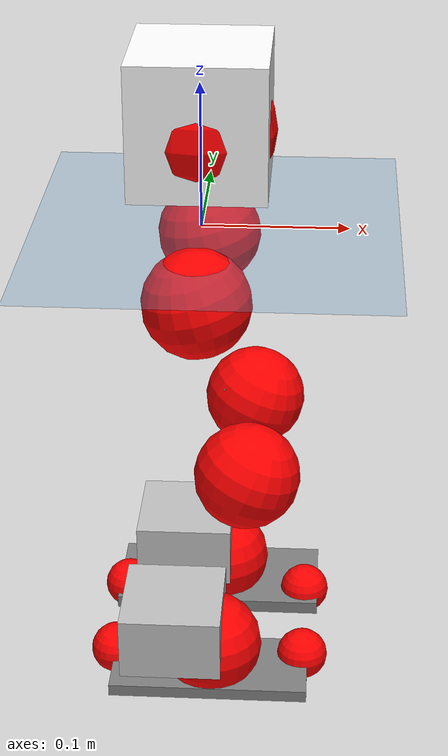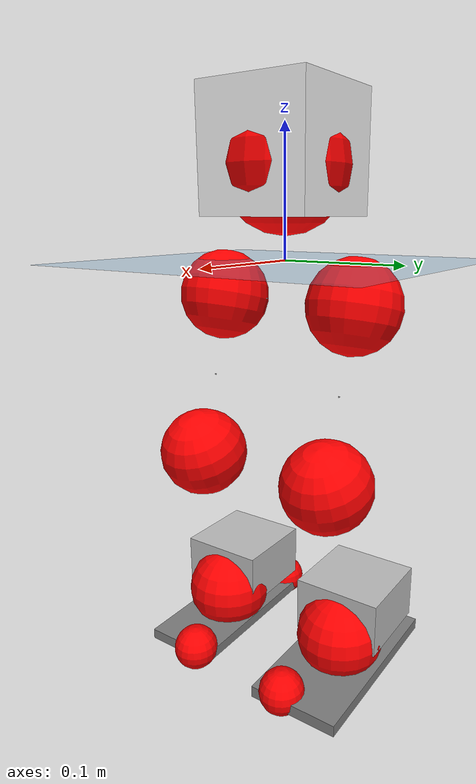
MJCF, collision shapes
<mujoco model="pi_12dof_release_v1">
  <compiler angle="radian" assetdir="assets" balanceinertia="true" inertiafromgeom="false"/>

  <option timestep="0.005" density="1.2" viscosity="2e-05"/>

  <size nkey="1"/>

  <visual>
    <quality shadowsize="8192"/>
    <map shadowclip="0.5"/>
  </visual>

  <default>
    <default class="/">
      <joint armature="0.01" damping="0.01" frictionloss="0.01"/>
      <geom contype="0" conaffinity="0" group="1" solref="-1000 -80"/>
      <site size="0.01 0.005 0.005" group="5"/>
      <general forcelimited="true" biastype="affine" gainprm="20" biasprm="0 -20 -0.5"/>
      <default class="foot">
        <geom size="0.0845 0.036 0.005" type="box" condim="6" group="4" priority="1" friction="0.9 0.2 0.2" solimp="0.015 1 0.005"/>
      </default>
      <default class="reward_collision_sphere">
        <geom group="5" rgba="1 0 0 1"/>
      </default>
    </default>
  </default>

  <asset>
    <texture type="skybox" colorspace="auto" name="//unnamed_texture_0" builtin="gradient" rgb1="0.95 0.95 0.95" rgb2="0.95 0.95 0.95" width="100" height="600"/>
    <texture type="2d" colorspace="auto" name="texplane" builtin="checker" rgb1="0.345 0.575 0.748" rgb2="0.345 0.575 0.748" markrgb="1 1 1" width="512" height="512"/>
    <material name="MatPlane" class="/" texture="texplane" texuniform="true" texrepeat="2 2" specular="0.9"/>
    <mesh name="baselink_1" class="/" file="baselink_1.STL"/>
    <mesh name="r_hip_pitch_link" class="/" file="r_hip_pitch_link.STL"/>
    <mesh name="r_hip_roll_link" class="/" file="r_hip_roll_link.STL"/>
    <mesh name="r_thigh_link" class="/" file="r_thigh_link.STL"/>
    <mesh name="r_calf_link" class="/" file="r_calf_link.STL"/>
    <mesh name="r_ankle_pitch_link" class="/" file="r_ankle_pitch_link.STL"/>
    <mesh name="r_ankle_roll_link" class="/" file="r_ankle_roll_link.STL"/>
    <mesh name="l_hip_pitch_link" class="/" file="l_hip_pitch_link.STL"/>
    <mesh name="l_hip_roll_link" class="/" file="l_hip_roll_link.STL"/>
    <mesh name="l_thigh_link" class="/" file="l_thigh_link.STL"/>
    <mesh name="l_calf_link" class="/" file="l_calf_link.STL"/>
    <mesh name="l_ankle_pitch_link" class="/" file="l_ankle_pitch_link.STL"/>
    <mesh name="l_ankle_roll_link" class="/" file="l_ankle_roll_link.STL"/>
  </asset>

  <worldbody>
    <geom name="floor" class="/" size="100 100 0.125" type="plane" group="0" material="MatPlane"/>
    <light name="toplight_shadow" class="/" pos="0 0 5" dir="0.0990148 0.0990148 -0.990148" type="directional" ambient="0.04 0.04 0.04" diffuse="0.55 0.55 0.55" specular="0.12 0.12 0.12"/>
    <light name="toplight_fill" class="/" pos="0 0 5" dir="0.0990148 0.0990148 -0.990148" type="directional" castshadow="false" ambient="0.04 0.04 0.04" diffuse="0.3 0.3 0.3" specular="0.08 0.08 0.08"/>
    <body name="trunk" pos="0.000375553 0.000514506 0.000960653" quat="1 0.000203268 -0.000288914 3.69027e-05">
      <inertial pos="0.00330946 -0.00153018 0.0392818" quat="0.695191 0.0105884 0.00915231 0.718688" mass="1.66823" diaginertia="0.0109363 0.00242148 0.00362285"/>
      <joint name="//unnamed_joint_0" type="free"/>
      <geom name="//unnamed_geom_1" class="/" type="mesh" density="0" rgba="1 1 1 1" mesh="baselink_1"/>
      <geom name="//unnamed_geom_2" class="/" size="0.0459382 0.0459382 0.0459382" pos="0 0 0.0774812" type="box" rgba="1 1 1 1"/>
      <geom name="//unnamed_geom_3" class="reward_collision_sphere" size="0.050532" pos="0 0 0.0677961"/>
      <site name="imu" class="/" pos="-0.00455598 -0.00835576 0.00321844" size="0.00918763"/>
      <camera name="track" class="/" pos="0 -1.53811 0" quat="0.707107 0.707107 0 0" mode="trackcom"/>
      <camera name="ego_camera" class="/" pos="0.0764041 0 0.174333" quat="-0.5 -0.5 0.5 0.5"/>
      <body name="r_hip_pitch_link" pos="0.000155052 -0.0174497 -0.0314338" quat="0.992122 -0.000277783 -0.125275 -0.000218766">
        <inertial pos="0.00200823 -0.0431153 -0.000134628" quat="-0.0192899 0.705043 -0.0289369 0.708312" mass="0.29076" diaginertia="0.000120749 2.67606e-05 7.08712e-05"/>
        <joint name="r_hip_pitch_joint" class="/" pos="0 0 0" axis="0.00361417 -0.999993 0.000896399" range="-1.75488 1.25558" armature="0.00961416" damping="0.0153221" frictionloss="0.00911432"/>
        <geom name="//unnamed_geom_4" class="/" type="mesh" density="0" rgba="0.75294 0.75294 0.75294 1" mesh="r_hip_pitch_link"/>
        <geom name="//unnamed_geom_5" class="/" size="0.000459382 0.000459382 0.000459382" type="box" rgba="0.75294 0.75294 0.75294 1"/>
        <body name="r_hip_roll_link" pos="0.000617799 -0.0426652 0.000321401" quat="1 4.64268e-05 2.2515e-05 -1.62879e-05">
          <inertial pos="-0.00141225 -0.00130535 -0.0612979" quat="0.706069 -0.0797487 -0.081684 0.69888" mass="0.29857" diaginertia="0.000367855 7.54612e-05 0.000109705"/>
          <joint name="r_hip_roll_joint" class="/" pos="0 0 0" axis="-0.999999 -0.00043908 -0.00121683" range="-0.112162 0.514971" armature="0.00890104" damping="0.00719683" frictionloss="0.00939752"/>
          <geom name="//unnamed_geom_6" class="/" type="mesh" density="0" rgba="0.75294 0.75294 0.75294 1" mesh="r_hip_roll_link"/>
          <geom name="//unnamed_geom_7" class="/" size="0.000459382 0.000459382 0.000459382" type="box" rgba="0.75294 0.75294 0.75294 1"/>
          <geom name="//unnamed_geom_8" class="reward_collision_sphere" size="0.0367505"/>
          <body name="r_thigh_link" pos="0.00156496 0.00216961 -0.0669937" quat="1 6.00627e-05 1.94693e-05 0.000155677">
            <inertial pos="0.000327142 0.00167691 -0.0467387" quat="0.737635 0.675199 0.000418734 -0.00034117" mass="0.0882984" diaginertia="0.000136027 2.53534e-05 4.91754e-05"/>
            <joint name="r_thigh_joint" class="/" pos="0 0 0" axis="0.000948526 0.000719857 -0.999999" range="-0.30599 0.581146" armature="0.00940854" damping="0.0017973" frictionloss="0.00840877"/>
            <geom name="//unnamed_geom_9" class="/" type="mesh" density="0" rgba="0.75294 0.75294 0.75294 1" mesh="r_thigh_link"/>
            <geom name="//unnamed_geom_10" class="/" size="0.000459382 0.000459382 0.000459382" type="box" rgba="0.75294 0.75294 0.75294 1"/>
            <body name="r_calf_link" pos="-0.00121756 -0.0024169 -0.0668819" quat="0.947632 -2.21306e-05 0.319364 -3.36891e-05">
              <inertial pos="8.42339e-05 4.88598e-05 -0.0675081" quat="0.999954 -0.00564569 0.00409786 0.00655672" mass="0.641366" diaginertia="0.0039676 0.00094532 0.000151833"/>
              <joint name="r_calf_joint" class="/" pos="0 0 0" axis="0.000805626 -0.999999 0.000600483" range="-1.63253 0.645395" armature="0.00920587" damping="0.0107345" frictionloss="0.00929109"/>
              <geom name="//unnamed_geom_11" class="/" type="mesh" density="0" rgba="0.75294 0.75294 0.75294 1" mesh="r_calf_link"/>
              <geom name="//unnamed_geom_12" class="/" size="0.000459382 0.000459382 0.000459382" type="box" rgba="0.75294 0.75294 0.75294 1"/>
              <geom name="//unnamed_geom_13" class="reward_collision_sphere" size="0.0367505"/>
              <body name="r_ankle_pitch_link" pos="1.9356e-05 1.53706e-05 -0.135478" quat="0.980025 -7.08504e-05 -0.198876 1.50898e-05">
                <inertial pos="0.00469317 0.00286313 -0.00154104" quat="0.00292431 0.713238 -0.00190911 0.700914" mass="0.13778" diaginertia="0.00034644 6.05136e-05 0.000103584"/>
                <joint name="r_ankle_pitch_joint" class="/" pos="0 0 0" axis="-0.000924454 -0.99999 0.00441992" range="-1.29928 0.531156" armature="0.00913283" damping="0.0085657" frictionloss="0.00945185"/>
                <geom name="//unnamed_geom_14" class="/" type="mesh" density="0" rgba="0.75294 0.75294 0.75294 1" mesh="r_ankle_pitch_link"/>
                <geom name="//unnamed_geom_15" class="/" size="0.0358318 0.0367505 0.0229691" type="box" rgba="0.75294 0.75294 0.75294 1"/>
                <body name="r_ankle_roll_link" pos="0.0777703 0.0025227 0.0002418" quat="1 3.26476e-05 -5.38313e-05 -0.00010611">
                  <inertial pos="-0.0242357 -0.000244807 -0.0123939" quat="0.556878 0.429516 0.437077 0.560685" mass="0.393588" diaginertia="0.00120136 0.000276777 0.000233523"/>
                  <joint name="r_ankle_roll_joint" class="/" pos="0 0 0" axis="-0.999984 0.00403427 0.00400208" stiffness="0.000744431" range="-0.164908 0.13999" armature="0.00865097" damping="0.00701129" frictionloss="0.00960826"/>
                  <geom name="//unnamed_geom_16" class="/" type="mesh" density="0" rgba="0.75294 0.75294 0.75294 1" mesh="r_ankle_roll_link"/>
                  <geom name="//unnamed_geom_17" class="/" type="mesh" rgba="0.75294 0.75294 0.75294 1" mesh="r_ankle_roll_link"/>
                  <geom name="right_foot" class="foot" size="0.0711081 0.0312772 0.00437218" pos="-0.0519548 0 -0.0426147"/>
                  <geom name="//unnamed_geom_19" class="reward_collision_sphere" size="0.0367505" pos="-0.050936 0 -0.0193703"/>
                  <geom name="//unnamed_geom_20" class="reward_collision_sphere" size="0.0183753" pos="0.0152808 0.0153811 -0.0387406"/>
                  <geom name="//unnamed_geom_21" class="reward_collision_sphere" size="0.0183753" pos="-0.122246 0.0153811 -0.0387406"/>
                  <site name="right_foot" class="foot" pos="-0.0519548 0 -0.0426147" size="0.00918763"/>
                </body>
              </body>
            </body>
          </body>
        </body>
      </body>
      <body name="l_hip_pitch_link" pos="0.000302311 0.0186995 -0.0326748" quat="0.992199 1.25457e-05 -0.124661 -1.53282e-05">
        <inertial pos="0.000942129 0.040945 -0.000953461" quat="-0.0401414 0.704369 0.0287087 0.708116" mass="0.303945" diaginertia="0.000140992 2.8321e-05 8.54324e-05"/>
        <joint name="l_hip_pitch_joint" class="/" pos="0 0 0" axis="0.00544056 0.999985 0.000236728" range="-1.25078 1.7536" armature="0.00911578" damping="0.0143739" frictionloss="0.00894791"/>
        <geom name="//unnamed_geom_22" class="/" type="mesh" density="0" rgba="0.75294 0.75294 0.75294 1" mesh="l_hip_pitch_link"/>
        <geom name="//unnamed_geom_23" class="/" size="0.000459382 0.000459382 0.000459382" type="box" rgba="0.75294 0.75294 0.75294 1"/>
        <body name="l_hip_roll_link" pos="0.000780536 0.0430121 0.000305478" quat="1 9.07308e-06 -0.00018335 -0.000203293">
          <inertial pos="-0.00170127 0.000276047 -0.0610271" quat="0.696586 -0.0764183 -0.0788812 0.709018" mass="0.296344" diaginertia="0.000356521 7.36043e-05 0.000107104"/>
          <joint name="l_hip_roll_joint" class="/" pos="0 0 0" axis="-1 -0.000216547 -1.99217e-05" range="-0.524583 0.11643" armature="0.00953068" damping="0" frictionloss="0.00921185"/>
          <geom name="//unnamed_geom_24" class="/" type="mesh" density="0" rgba="0.75294 0.75294 0.75294 1" mesh="l_hip_roll_link"/>
          <geom name="//unnamed_geom_25" class="/" size="0.000459382 0.000459382 0.000459382" type="box" rgba="0.75294 0.75294 0.75294 1"/>
          <geom name="//unnamed_geom_26" class="reward_collision_sphere" size="0.0367505"/>
          <body name="l_thigh_link" pos="0.000583346 -0.00154829 -0.0671113" quat="1 -5.02964e-05 9.61274e-05 9.54319e-05">
            <inertial pos="-0.000445385 -0.000729857 -0.0467721" quat="0.675555 0.73731 0.000107894 0.000563452" mass="0.0877762" diaginertia="0.000137512 2.52508e-05 4.979e-05"/>
            <joint name="l_thigh_joint" class="/" pos="0 0 0" axis="0.000933354 -0.000361602 -0.999999" range="-0.598273 0.315935" armature="0.00908137" damping="0.00398708" frictionloss="0.00897678"/>
            <geom name="//unnamed_geom_27" class="/" type="mesh" density="0" rgba="0.75294 0.75294 0.75294 1" mesh="l_thigh_link"/>
            <geom name="//unnamed_geom_28" class="/" size="0.000459382 0.000459382 0.000459382" type="box" rgba="0.75294 0.75294 0.75294 1"/>
            <body name="l_calf_link" pos="-0.000652489 0.000246773 -0.0687739" quat="0.947692 -0.000135137 0.319186 -8.83851e-05">
              <inertial pos="0.000420367 0.00275329 -0.0679262" quat="0.999983 0.00313809 -2.49328e-05 0.00485165" mass="0.612421" diaginertia="0.00376835 0.000919264 0.000146201"/>
              <joint name="l_calf_joint" class="/" pos="0 0 0" axis="-0.000258617 0.999999 0.00169222" range="-0.618877 1.67071" armature="0.00915965" damping="0.00725139" frictionloss="0.00894626"/>
              <geom name="//unnamed_geom_29" class="/" type="mesh" density="0" rgba="0.75294 0.75294 0.75294 1" mesh="l_calf_link"/>
              <geom name="//unnamed_geom_30" class="/" size="0.000459382 0.000459382 0.000459382" type="box" rgba="0.75294 0.75294 0.75294 1"/>
              <geom name="//unnamed_geom_31" class="reward_collision_sphere" size="0.0367505"/>
              <body name="l_ankle_pitch_link" pos="-0.000172039 0.000762501 -0.134939" quat="0.980052 -4.2705e-06 -0.198742 5.49521e-05">
                <inertial pos="0.00572019 -0.001242 8.52226e-05" quat="-0.00237861 0.707112 0.00200009 0.707095" mass="0.135621" diaginertia="0.000332524 5.9286e-05 0.000101991"/>
                <joint name="l_ankle_pitch_joint" class="/" pos="0 0 0" axis="6.11175e-05 1 -0.000471603" range="-0.525329 1.29291" armature="0.00914748" damping="0.0029052" frictionloss="0.00930272"/>
                <geom name="//unnamed_geom_32" class="/" type="mesh" density="0" rgba="0.75294 0.75294 0.75294 1" mesh="l_ankle_pitch_link"/>
                <geom name="//unnamed_geom_33" class="/" size="0.0358318 0.0367505 0.0229691" type="box" rgba="0.75294 0.75294 0.75294 1"/>
                <body name="l_ankle_roll_link" pos="0.0776122 0.00036956 -0.000632479" quat="1 0.000126946 3.9208e-06 -1.04484e-05">
                  <inertial pos="-0.0250718 -0.000188482 -0.0142248" quat="0.559412 0.429047 0.436129 0.559256" mass="0.406008" diaginertia="0.00124574 0.000278963 0.000242776"/>
                  <joint name="l_ankle_roll_joint" class="/" pos="0 0 0" axis="-1 -0.000291848 -0.000231713" range="-0.159123 0.151451" armature="0.00906762" damping="0.00953451" frictionloss="0.00920133"/>
                  <geom name="//unnamed_geom_34" class="/" type="mesh" density="0" rgba="0.75294 0.75294 0.75294 1" mesh="l_ankle_roll_link"/>
                  <geom name="//unnamed_geom_35" class="/" type="mesh" rgba="0.75294 0.75294 0.75294 1" mesh="l_ankle_roll_link"/>
                  <geom name="left_foot" class="foot" size="0.077345 0.0374382 0.00479448" pos="-0.0519548 0 -0.0426147"/>
                  <geom name="//unnamed_geom_37" class="reward_collision_sphere" size="0.0367505" pos="-0.050936 0 -0.0193703"/>
                  <geom name="//unnamed_geom_38" class="reward_collision_sphere" size="0.0183753" pos="0.0152808 -0.0153811 -0.0387406"/>
                  <geom name="//unnamed_geom_39" class="reward_collision_sphere" size="0.0183753" pos="-0.122246 -0.0153811 -0.0387406"/>
                  <site name="left_foot" class="foot" pos="-0.0519548 0 -0.0426147" size="0.00918763"/>
                </body>
              </body>
            </body>
          </body>
        </body>
      </body>
    </body>
  </worldbody>

  <contact>
    <pair class="/" geom1="floor" geom2="right_foot" name="//unnamed_contact_1"/>
    <pair class="/" geom1="floor" geom2="left_foot" name="//unnamed_contact_0"/>
  </contact>

  <actuator>
    <general name="r_hip_pitch_joint" class="/" joint="r_hip_pitch_joint" forcerange="-19.2661 19.2661" gainprm="18.4382" biasprm="0 -18.4382 -0.465724"/>
    <general name="r_hip_roll_joint" class="/" joint="r_hip_roll_joint" forcerange="-18.8132 18.8132" gainprm="18.4382" biasprm="0 -18.4382 -0.465724"/>
    <general name="r_thigh_joint" class="/" joint="r_thigh_joint" forcerange="-18.6349 18.6349" gainprm="18.4382" biasprm="0 -18.4382 -0.465724"/>
    <general name="r_calf_joint" class="/" joint="r_calf_joint" forcerange="-19.6223 19.6223" gainprm="18.4382" biasprm="0 -18.4382 -0.465724"/>
    <general name="r_ankle_pitch_joint" class="/" joint="r_ankle_pitch_joint" forcerange="-18.8003 18.8003" gainprm="18.4382" biasprm="0 -18.4382 -0.465724"/>
    <general name="r_ankle_roll_joint" class="/" joint="r_ankle_roll_joint" forcerange="-18.6004 18.6004" gainprm="18.4382" biasprm="0 -18.4382 -0.465724"/>
    <general name="l_hip_pitch_joint" class="/" joint="l_hip_pitch_joint" forcerange="-19.6169 19.6169" gainprm="18.4382" biasprm="0 -18.4382 -0.465724"/>
    <general name="l_hip_roll_joint" class="/" joint="l_hip_roll_joint" forcerange="-19.6208 19.6208" gainprm="18.4382" biasprm="0 -18.4382 -0.465724"/>
    <general name="l_thigh_joint" class="/" joint="l_thigh_joint" forcerange="-18.6309 18.6309" gainprm="18.4382" biasprm="0 -18.4382 -0.465724"/>
    <general name="l_calf_joint" class="/" joint="l_calf_joint" forcerange="-19.4654 19.4654" gainprm="18.4382" biasprm="0 -18.4382 -0.465724"/>
    <general name="l_ankle_pitch_joint" class="/" joint="l_ankle_pitch_joint" forcerange="-18.6991 18.6991" gainprm="18.4382" biasprm="0 -18.4382 -0.465724"/>
    <general name="l_ankle_roll_joint" class="/" joint="l_ankle_roll_joint" forcerange="-20.567 20.567" gainprm="18.4382" biasprm="0 -18.4382 -0.465724"/>
  </actuator>

  <sensor>
    <gyro site="imu" name="imu_angular_velocity"/>
    <velocimeter site="imu" name="imu_linear_velocity"/>
    <framelinvel objtype="site" objname="left_foot" name="left_foot_global_linear_velocity"/>
    <framelinvel objtype="site" objname="right_foot" name="right_foot_global_linear_velocity"/>
  </sensor>

  <keyframe>
    <key name="home" qpos="0 0 0.291 1 0 0 0 0.4 0 0 -0.8 0.4 0 -0.4 0 0 0.8 -0.4 0"/>
  </keyframe>
</mujoco>
